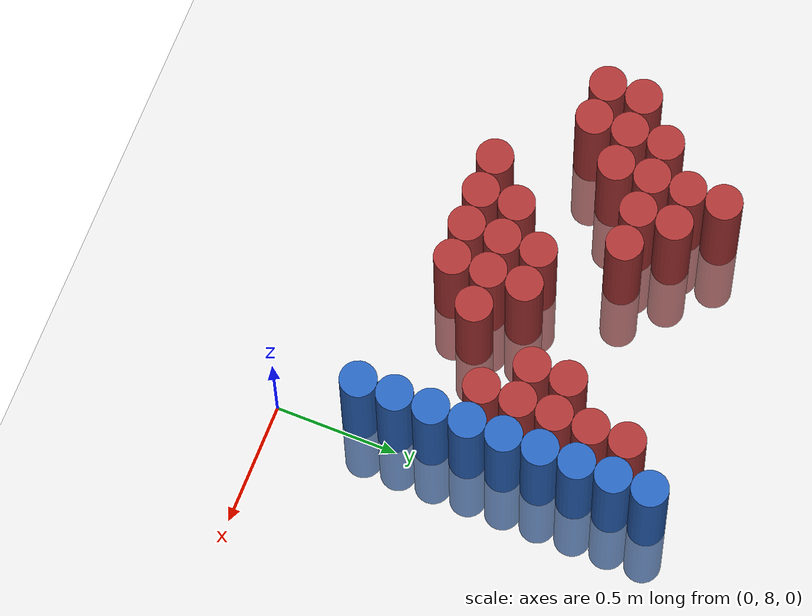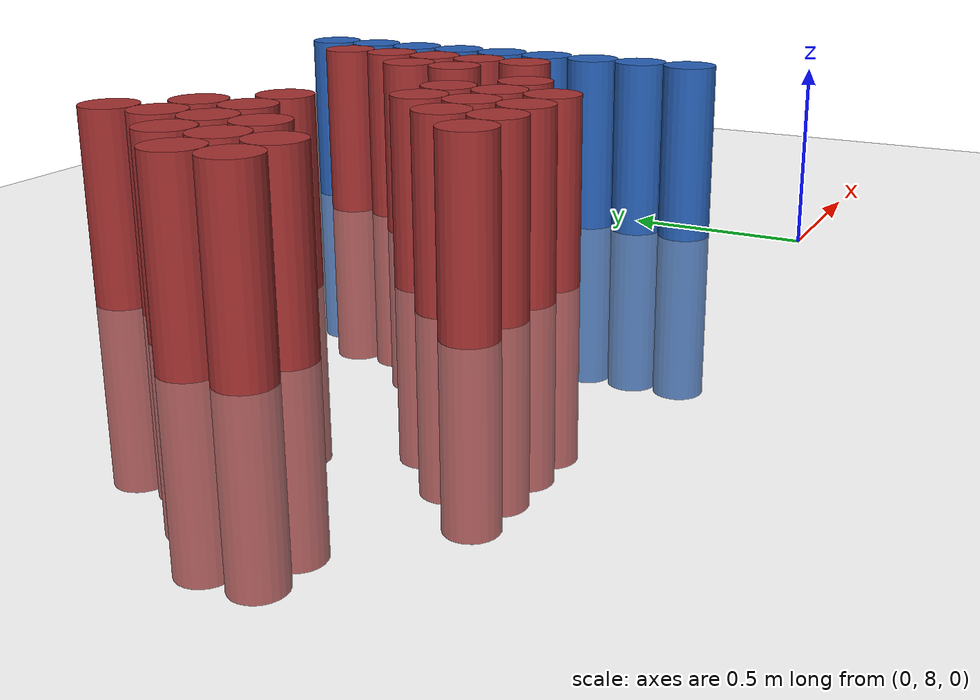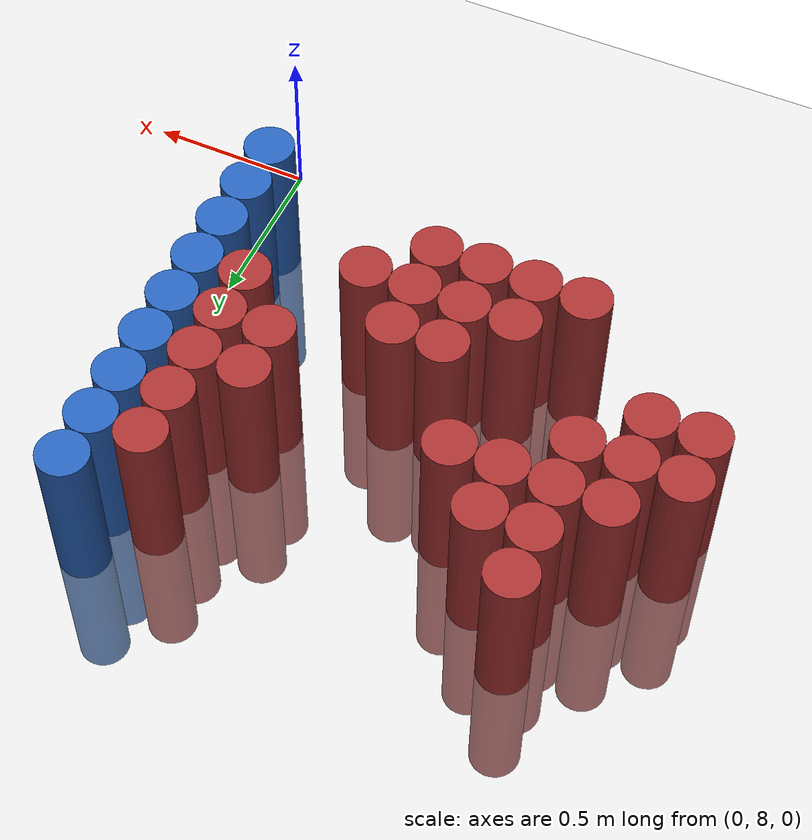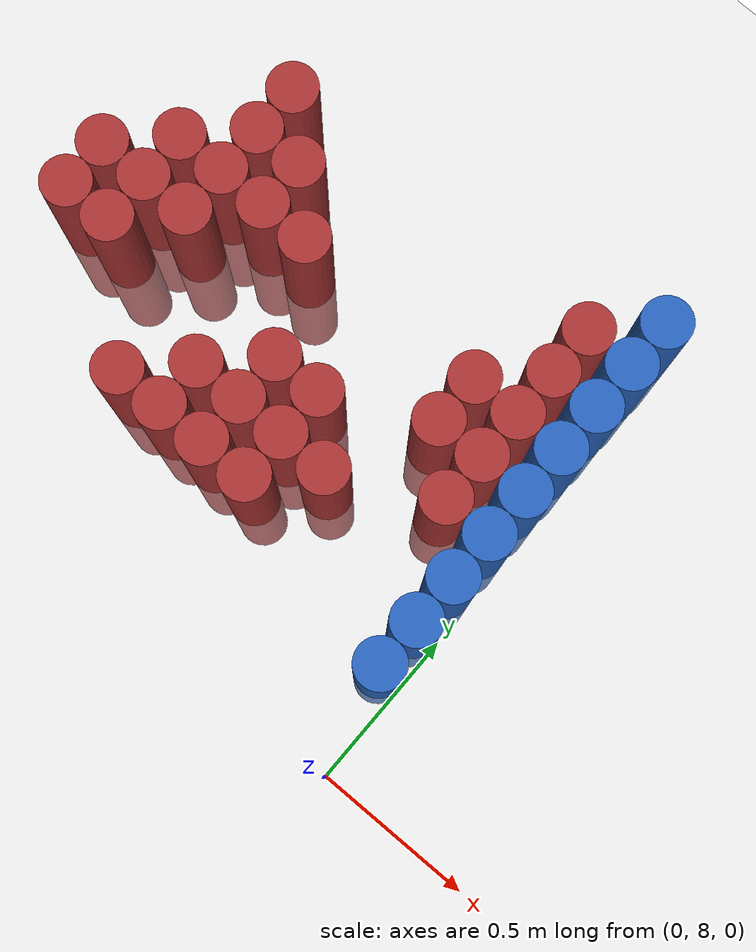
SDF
<sdf version="1.6">
 <world name="default">
  <model name="ground_plane">
   <static>1</static>
   <link name="link">
    <collision name="collision">
     <geometry><plane><normal>0 0 1</normal><size>100 100</size></plane></geometry>
     <surface><friction><ode><mu>100</mu><mu2>50</mu2></ode></friction></surface>
    </collision>
    <visual name="visual">
     <cast_shadows>0</cast_shadows>
     <geometry><plane><normal>0 0 1</normal><size>100 100</size></plane></geometry>
     <material>
      <script><uri>file://media/materials/scripts/gazebo.material</uri><name>Gazebo/Grey</name></script>
     </material>
    </visual>
   </link>
  </model>
  <model name="unit_cylinder_211">
   <static>1</static>
   <pose>-1.575000 8.775000 0.000000 0.000000 0.000000 0.000000</pose>
   <link name="link">
    <inertial>
     <mass>1</mass>
     <inertia><ixx>0.145833</ixx><ixy>0</ixy><ixz>0</ixz><iyy>0.145833</iyy><iyz>0</iyz><izz>0.125</izz></inertia>
    </inertial>
    <collision name="collision">
     <geometry><cylinder><radius>0.075000</radius><length>1</length></cylinder></geometry>
    </collision>
    <visual name="visual">
     <geometry><cylinder><radius>0.075000</radius><length>1</length></cylinder></geometry>
     <material>
      <ambient>0.648000 0.192000 0.192000 1</ambient>
      <diffuse>0.648000 0.192000 0.192000 1</diffuse>
     </material>
     <material>
      <script><name>Gazebo/Grey</name><uri>file://media/materials/scripts/gazebo.material</uri></script>
     </material>
    </visual>
    <sensor name="sensor_contact" type="contact"><contact><collision>collision</collision></contact></sensor>
   </link>
   <plugin filename="gz-sim-touchplugin-system" name="gz::sim::systems::TouchPlugin">
    <target>robot</target>
    <namespace>robot</namespace>
    <time>0.001</time>
    <enabled>true</enabled>
   </plugin>
  </model>
  <model name="unit_cylinder_212">
   <static>1</static>
   <pose>-1.575000 8.925000 0.000000 0.000000 0.000000 0.000000</pose>
   <link name="link">
    <inertial>
     <mass>1</mass>
     <inertia><ixx>0.145833</ixx><ixy>0</ixy><ixz>0</ixz><iyy>0.145833</iyy><iyz>0</iyz><izz>0.125</izz></inertia>
    </inertial>
    <collision name="collision">
     <geometry><cylinder><radius>0.075000</radius><length>1</length></cylinder></geometry>
    </collision>
    <visual name="visual">
     <geometry><cylinder><radius>0.075000</radius><length>1</length></cylinder></geometry>
     <material>
      <ambient>0.648000 0.192000 0.192000 1</ambient>
      <diffuse>0.648000 0.192000 0.192000 1</diffuse>
     </material>
     <material>
      <script><name>Gazebo/Grey</name><uri>file://media/materials/scripts/gazebo.material</uri></script>
     </material>
    </visual>
    <sensor name="sensor_contact" type="contact"><contact><collision>collision</collision></contact></sensor>
   </link>
   <plugin filename="gz-sim-touchplugin-system" name="gz::sim::systems::TouchPlugin">
    <target>robot</target>
    <namespace>robot</namespace>
    <time>0.001</time>
    <enabled>true</enabled>
   </plugin>
  </model>
  <model name="unit_cylinder_221">
   <static>1</static>
   <pose>-1.425000 8.775000 0.000000 0.000000 0.000000 0.000000</pose>
   <link name="link">
    <inertial>
     <mass>1</mass>
     <inertia><ixx>0.145833</ixx><ixy>0</ixy><ixz>0</ixz><iyy>0.145833</iyy><iyz>0</iyz><izz>0.125</izz></inertia>
    </inertial>
    <collision name="collision">
     <geometry><cylinder><radius>0.075000</radius><length>1</length></cylinder></geometry>
    </collision>
    <visual name="visual">
     <geometry><cylinder><radius>0.075000</radius><length>1</length></cylinder></geometry>
     <material>
      <ambient>0.648000 0.192000 0.192000 1</ambient>
      <diffuse>0.648000 0.192000 0.192000 1</diffuse>
     </material>
     <material>
      <script><name>Gazebo/Grey</name><uri>file://media/materials/scripts/gazebo.material</uri></script>
     </material>
    </visual>
    <sensor name="sensor_contact" type="contact"><contact><collision>collision</collision></contact></sensor>
   </link>
   <plugin filename="gz-sim-touchplugin-system" name="gz::sim::systems::TouchPlugin">
    <target>robot</target>
    <namespace>robot</namespace>
    <time>0.001</time>
    <enabled>true</enabled>
   </plugin>
  </model>
  <model name="unit_cylinder_222">
   <static>1</static>
   <pose>-1.425000 8.925000 0.000000 0.000000 0.000000 0.000000</pose>
   <link name="link">
    <inertial>
     <mass>1</mass>
     <inertia><ixx>0.145833</ixx><ixy>0</ixy><ixz>0</ixz><iyy>0.145833</iyy><iyz>0</iyz><izz>0.125</izz></inertia>
    </inertial>
    <collision name="collision">
     <geometry><cylinder><radius>0.075000</radius><length>1</length></cylinder></geometry>
    </collision>
    <visual name="visual">
     <geometry><cylinder><radius>0.075000</radius><length>1</length></cylinder></geometry>
     <material>
      <ambient>0.648000 0.192000 0.192000 1</ambient>
      <diffuse>0.648000 0.192000 0.192000 1</diffuse>
     </material>
     <material>
      <script><name>Gazebo/Grey</name><uri>file://media/materials/scripts/gazebo.material</uri></script>
     </material>
    </visual>
    <sensor name="sensor_contact" type="contact"><contact><collision>collision</collision></contact></sensor>
   </link>
   <plugin filename="gz-sim-touchplugin-system" name="gz::sim::systems::TouchPlugin">
    <target>robot</target>
    <namespace>robot</namespace>
    <time>0.001</time>
    <enabled>true</enabled>
   </plugin>
  </model>
  <model name="unit_cylinder_223">
   <static>1</static>
   <pose>-1.425000 9.075000 0.000000 0.000000 0.000000 0.000000</pose>
   <link name="link">
    <inertial>
     <mass>1</mass>
     <inertia><ixx>0.145833</ixx><ixy>0</ixy><ixz>0</ixz><iyy>0.145833</iyy><iyz>0</iyz><izz>0.125</izz></inertia>
    </inertial>
    <collision name="collision">
     <geometry><cylinder><radius>0.075000</radius><length>1</length></cylinder></geometry>
    </collision>
    <visual name="visual">
     <geometry><cylinder><radius>0.075000</radius><length>1</length></cylinder></geometry>
     <material>
      <ambient>0.648000 0.192000 0.192000 1</ambient>
      <diffuse>0.648000 0.192000 0.192000 1</diffuse>
     </material>
     <material>
      <script><name>Gazebo/Grey</name><uri>file://media/materials/scripts/gazebo.material</uri></script>
     </material>
    </visual>
    <sensor name="sensor_contact" type="contact"><contact><collision>collision</collision></contact></sensor>
   </link>
   <plugin filename="gz-sim-touchplugin-system" name="gz::sim::systems::TouchPlugin">
    <target>robot</target>
    <namespace>robot</namespace>
    <time>0.001</time>
    <enabled>true</enabled>
   </plugin>
  </model>
  <model name="unit_cylinder_233">
   <static>1</static>
   <pose>-1.275000 8.925000 0.000000 0.000000 0.000000 0.000000</pose>
   <link name="link">
    <inertial>
     <mass>1</mass>
     <inertia><ixx>0.145833</ixx><ixy>0</ixy><ixz>0</ixz><iyy>0.145833</iyy><iyz>0</iyz><izz>0.125</izz></inertia>
    </inertial>
    <collision name="collision">
     <geometry><cylinder><radius>0.075000</radius><length>1</length></cylinder></geometry>
    </collision>
    <visual name="visual">
     <geometry><cylinder><radius>0.075000</radius><length>1</length></cylinder></geometry>
     <material>
      <ambient>0.648000 0.192000 0.192000 1</ambient>
      <diffuse>0.648000 0.192000 0.192000 1</diffuse>
     </material>
     <material>
      <script><name>Gazebo/Grey</name><uri>file://media/materials/scripts/gazebo.material</uri></script>
     </material>
    </visual>
    <sensor name="sensor_contact" type="contact"><contact><collision>collision</collision></contact></sensor>
   </link>
   <plugin filename="gz-sim-touchplugin-system" name="gz::sim::systems::TouchPlugin">
    <target>robot</target>
    <namespace>robot</namespace>
    <time>0.001</time>
    <enabled>true</enabled>
   </plugin>
  </model>
  <model name="unit_cylinder_234">
   <static>1</static>
   <pose>-1.275000 9.075000 0.000000 0.000000 0.000000 0.000000</pose>
   <link name="link">
    <inertial>
     <mass>1</mass>
     <inertia><ixx>0.145833</ixx><ixy>0</ixy><ixz>0</ixz><iyy>0.145833</iyy><iyz>0</iyz><izz>0.125</izz></inertia>
    </inertial>
    <collision name="collision">
     <geometry><cylinder><radius>0.075000</radius><length>1</length></cylinder></geometry>
    </collision>
    <visual name="visual">
     <geometry><cylinder><radius>0.075000</radius><length>1</length></cylinder></geometry>
     <material>
      <ambient>0.648000 0.192000 0.192000 1</ambient>
      <diffuse>0.648000 0.192000 0.192000 1</diffuse>
     </material>
     <material>
      <script><name>Gazebo/Grey</name><uri>file://media/materials/scripts/gazebo.material</uri></script>
     </material>
    </visual>
    <sensor name="sensor_contact" type="contact"><contact><collision>collision</collision></contact></sensor>
   </link>
   <plugin filename="gz-sim-touchplugin-system" name="gz::sim::systems::TouchPlugin">
    <target>robot</target>
    <namespace>robot</namespace>
    <time>0.001</time>
    <enabled>true</enabled>
   </plugin>
  </model>
  <model name="unit_cylinder_235">
   <static>1</static>
   <pose>-1.275000 9.225000 0.000000 0.000000 0.000000 0.000000</pose>
   <link name="link">
    <inertial>
     <mass>1</mass>
     <inertia><ixx>0.145833</ixx><ixy>0</ixy><ixz>0</ixz><iyy>0.145833</iyy><iyz>0</iyz><izz>0.125</izz></inertia>
    </inertial>
    <collision name="collision">
     <geometry><cylinder><radius>0.075000</radius><length>1</length></cylinder></geometry>
    </collision>
    <visual name="visual">
     <geometry><cylinder><radius>0.075000</radius><length>1</length></cylinder></geometry>
     <material>
      <ambient>0.648000 0.192000 0.192000 1</ambient>
      <diffuse>0.648000 0.192000 0.192000 1</diffuse>
     </material>
     <material>
      <script><name>Gazebo/Grey</name><uri>file://media/materials/scripts/gazebo.material</uri></script>
     </material>
    </visual>
    <sensor name="sensor_contact" type="contact"><contact><collision>collision</collision></contact></sensor>
   </link>
   <plugin filename="gz-sim-touchplugin-system" name="gz::sim::systems::TouchPlugin">
    <target>robot</target>
    <namespace>robot</namespace>
    <time>0.001</time>
    <enabled>true</enabled>
   </plugin>
  </model>
  <model name="unit_cylinder_236">
   <static>1</static>
   <pose>-1.275000 9.375000 0.000000 0.000000 0.000000 0.000000</pose>
   <link name="link">
    <inertial>
     <mass>1</mass>
     <inertia><ixx>0.145833</ixx><ixy>0</ixy><ixz>0</ixz><iyy>0.145833</iyy><iyz>0</iyz><izz>0.125</izz></inertia>
    </inertial>
    <collision name="collision">
     <geometry><cylinder><radius>0.075000</radius><length>1</length></cylinder></geometry>
    </collision>
    <visual name="visual">
     <geometry><cylinder><radius>0.075000</radius><length>1</length></cylinder></geometry>
     <material>
      <ambient>0.648000 0.192000 0.192000 1</ambient>
      <diffuse>0.648000 0.192000 0.192000 1</diffuse>
     </material>
     <material>
      <script><name>Gazebo/Grey</name><uri>file://media/materials/scripts/gazebo.material</uri></script>
     </material>
    </visual>
    <sensor name="sensor_contact" type="contact"><contact><collision>collision</collision></contact></sensor>
   </link>
   <plugin filename="gz-sim-touchplugin-system" name="gz::sim::systems::TouchPlugin">
    <target>robot</target>
    <namespace>robot</namespace>
    <time>0.001</time>
    <enabled>true</enabled>
   </plugin>
  </model>
  <model name="unit_cylinder_248">
   <static>1</static>
   <pose>-1.125000 8.475000 0.000000 0.000000 0.000000 0.000000</pose>
   <link name="link">
    <inertial>
     <mass>1</mass>
     <inertia><ixx>0.145833</ixx><ixy>0</ixy><ixz>0</ixz><iyy>0.145833</iyy><iyz>0</iyz><izz>0.125</izz></inertia>
    </inertial>
    <collision name="collision">
     <geometry><cylinder><radius>0.075000</radius><length>1</length></cylinder></geometry>
    </collision>
    <visual name="visual">
     <geometry><cylinder><radius>0.075000</radius><length>1</length></cylinder></geometry>
     <material>
      <ambient>0.648000 0.192000 0.192000 1</ambient>
      <diffuse>0.648000 0.192000 0.192000 1</diffuse>
     </material>
     <material>
      <script><name>Gazebo/Grey</name><uri>file://media/materials/scripts/gazebo.material</uri></script>
     </material>
    </visual>
    <sensor name="sensor_contact" type="contact"><contact><collision>collision</collision></contact></sensor>
   </link>
   <plugin filename="gz-sim-touchplugin-system" name="gz::sim::systems::TouchPlugin">
    <target>robot</target>
    <namespace>robot</namespace>
    <time>0.001</time>
    <enabled>true</enabled>
   </plugin>
  </model>
  <model name="unit_cylinder_249">
   <static>1</static>
   <pose>-1.125000 9.075000 0.000000 0.000000 0.000000 0.000000</pose>
   <link name="link">
    <inertial>
     <mass>1</mass>
     <inertia><ixx>0.145833</ixx><ixy>0</ixy><ixz>0</ixz><iyy>0.145833</iyy><iyz>0</iyz><izz>0.125</izz></inertia>
    </inertial>
    <collision name="collision">
     <geometry><cylinder><radius>0.075000</radius><length>1</length></cylinder></geometry>
    </collision>
    <visual name="visual">
     <geometry><cylinder><radius>0.075000</radius><length>1</length></cylinder></geometry>
     <material>
      <ambient>0.648000 0.192000 0.192000 1</ambient>
      <diffuse>0.648000 0.192000 0.192000 1</diffuse>
     </material>
     <material>
      <script><name>Gazebo/Grey</name><uri>file://media/materials/scripts/gazebo.material</uri></script>
     </material>
    </visual>
    <sensor name="sensor_contact" type="contact"><contact><collision>collision</collision></contact></sensor>
   </link>
   <plugin filename="gz-sim-touchplugin-system" name="gz::sim::systems::TouchPlugin">
    <target>robot</target>
    <namespace>robot</namespace>
    <time>0.001</time>
    <enabled>true</enabled>
   </plugin>
  </model>
  <model name="unit_cylinder_250">
   <static>1</static>
   <pose>-1.125000 9.225000 0.000000 0.000000 0.000000 0.000000</pose>
   <link name="link">
    <inertial>
     <mass>1</mass>
     <inertia><ixx>0.145833</ixx><ixy>0</ixy><ixz>0</ixz><iyy>0.145833</iyy><iyz>0</iyz><izz>0.125</izz></inertia>
    </inertial>
    <collision name="collision">
     <geometry><cylinder><radius>0.075000</radius><length>1</length></cylinder></geometry>
    </collision>
    <visual name="visual">
     <geometry><cylinder><radius>0.075000</radius><length>1</length></cylinder></geometry>
     <material>
      <ambient>0.648000 0.192000 0.192000 1</ambient>
      <diffuse>0.648000 0.192000 0.192000 1</diffuse>
     </material>
     <material>
      <script><name>Gazebo/Grey</name><uri>file://media/materials/scripts/gazebo.material</uri></script>
     </material>
    </visual>
    <sensor name="sensor_contact" type="contact"><contact><collision>collision</collision></contact></sensor>
   </link>
   <plugin filename="gz-sim-touchplugin-system" name="gz::sim::systems::TouchPlugin">
    <target>robot</target>
    <namespace>robot</namespace>
    <time>0.001</time>
    <enabled>true</enabled>
   </plugin>
  </model>
  <model name="unit_cylinder_260">
   <static>1</static>
   <pose>-0.975000 8.475000 0.000000 0.000000 0.000000 0.000000</pose>
   <link name="link">
    <inertial>
     <mass>1</mass>
     <inertia><ixx>0.145833</ixx><ixy>0</ixy><ixz>0</ixz><iyy>0.145833</iyy><iyz>0</iyz><izz>0.125</izz></inertia>
    </inertial>
    <collision name="collision">
     <geometry><cylinder><radius>0.075000</radius><length>1</length></cylinder></geometry>
    </collision>
    <visual name="visual">
     <geometry><cylinder><radius>0.075000</radius><length>1</length></cylinder></geometry>
     <material>
      <ambient>0.648000 0.192000 0.192000 1</ambient>
      <diffuse>0.648000 0.192000 0.192000 1</diffuse>
     </material>
     <material>
      <script><name>Gazebo/Grey</name><uri>file://media/materials/scripts/gazebo.material</uri></script>
     </material>
    </visual>
    <sensor name="sensor_contact" type="contact"><contact><collision>collision</collision></contact></sensor>
   </link>
   <plugin filename="gz-sim-touchplugin-system" name="gz::sim::systems::TouchPlugin">
    <target>robot</target>
    <namespace>robot</namespace>
    <time>0.001</time>
    <enabled>true</enabled>
   </plugin>
  </model>
  <model name="unit_cylinder_261">
   <static>1</static>
   <pose>-0.975000 8.625000 0.000000 0.000000 0.000000 0.000000</pose>
   <link name="link">
    <inertial>
     <mass>1</mass>
     <inertia><ixx>0.145833</ixx><ixy>0</ixy><ixz>0</ixz><iyy>0.145833</iyy><iyz>0</iyz><izz>0.125</izz></inertia>
    </inertial>
    <collision name="collision">
     <geometry><cylinder><radius>0.075000</radius><length>1</length></cylinder></geometry>
    </collision>
    <visual name="visual">
     <geometry><cylinder><radius>0.075000</radius><length>1</length></cylinder></geometry>
     <material>
      <ambient>0.648000 0.192000 0.192000 1</ambient>
      <diffuse>0.648000 0.192000 0.192000 1</diffuse>
     </material>
     <material>
      <script><name>Gazebo/Grey</name><uri>file://media/materials/scripts/gazebo.material</uri></script>
     </material>
    </visual>
    <sensor name="sensor_contact" type="contact"><contact><collision>collision</collision></contact></sensor>
   </link>
   <plugin filename="gz-sim-touchplugin-system" name="gz::sim::systems::TouchPlugin">
    <target>robot</target>
    <namespace>robot</namespace>
    <time>0.001</time>
    <enabled>true</enabled>
   </plugin>
  </model>
  <model name="unit_cylinder_262">
   <static>1</static>
   <pose>-0.975000 9.075000 0.000000 0.000000 0.000000 0.000000</pose>
   <link name="link">
    <inertial>
     <mass>1</mass>
     <inertia><ixx>0.145833</ixx><ixy>0</ixy><ixz>0</ixz><iyy>0.145833</iyy><iyz>0</iyz><izz>0.125</izz></inertia>
    </inertial>
    <collision name="collision">
     <geometry><cylinder><radius>0.075000</radius><length>1</length></cylinder></geometry>
    </collision>
    <visual name="visual">
     <geometry><cylinder><radius>0.075000</radius><length>1</length></cylinder></geometry>
     <material>
      <ambient>0.648000 0.192000 0.192000 1</ambient>
      <diffuse>0.648000 0.192000 0.192000 1</diffuse>
     </material>
     <material>
      <script><name>Gazebo/Grey</name><uri>file://media/materials/scripts/gazebo.material</uri></script>
     </material>
    </visual>
    <sensor name="sensor_contact" type="contact"><contact><collision>collision</collision></contact></sensor>
   </link>
   <plugin filename="gz-sim-touchplugin-system" name="gz::sim::systems::TouchPlugin">
    <target>robot</target>
    <namespace>robot</namespace>
    <time>0.001</time>
    <enabled>true</enabled>
   </plugin>
  </model>
  <model name="unit_cylinder_267">
   <static>1</static>
   <pose>-0.825000 8.475000 0.000000 0.000000 0.000000 0.000000</pose>
   <link name="link">
    <inertial>
     <mass>1</mass>
     <inertia><ixx>0.145833</ixx><ixy>0</ixy><ixz>0</ixz><iyy>0.145833</iyy><iyz>0</iyz><izz>0.125</izz></inertia>
    </inertial>
    <collision name="collision">
     <geometry><cylinder><radius>0.075000</radius><length>1</length></cylinder></geometry>
    </collision>
    <visual name="visual">
     <geometry><cylinder><radius>0.075000</radius><length>1</length></cylinder></geometry>
     <material>
      <ambient>0.648000 0.192000 0.192000 1</ambient>
      <diffuse>0.648000 0.192000 0.192000 1</diffuse>
     </material>
     <material>
      <script><name>Gazebo/Grey</name><uri>file://media/materials/scripts/gazebo.material</uri></script>
     </material>
    </visual>
    <sensor name="sensor_contact" type="contact"><contact><collision>collision</collision></contact></sensor>
   </link>
   <plugin filename="gz-sim-touchplugin-system" name="gz::sim::systems::TouchPlugin">
    <target>robot</target>
    <namespace>robot</namespace>
    <time>0.001</time>
    <enabled>true</enabled>
   </plugin>
  </model>
  <model name="unit_cylinder_268">
   <static>1</static>
   <pose>-0.825000 8.625000 0.000000 0.000000 0.000000 0.000000</pose>
   <link name="link">
    <inertial>
     <mass>1</mass>
     <inertia><ixx>0.145833</ixx><ixy>0</ixy><ixz>0</ixz><iyy>0.145833</iyy><iyz>0</iyz><izz>0.125</izz></inertia>
    </inertial>
    <collision name="collision">
     <geometry><cylinder><radius>0.075000</radius><length>1</length></cylinder></geometry>
    </collision>
    <visual name="visual">
     <geometry><cylinder><radius>0.075000</radius><length>1</length></cylinder></geometry>
     <material>
      <ambient>0.648000 0.192000 0.192000 1</ambient>
      <diffuse>0.648000 0.192000 0.192000 1</diffuse>
     </material>
     <material>
      <script><name>Gazebo/Grey</name><uri>file://media/materials/scripts/gazebo.material</uri></script>
     </material>
    </visual>
    <sensor name="sensor_contact" type="contact"><contact><collision>collision</collision></contact></sensor>
   </link>
   <plugin filename="gz-sim-touchplugin-system" name="gz::sim::systems::TouchPlugin">
    <target>robot</target>
    <namespace>robot</namespace>
    <time>0.001</time>
    <enabled>true</enabled>
   </plugin>
  </model>
  <model name="unit_cylinder_269">
   <static>1</static>
   <pose>-0.825000 8.775000 0.000000 0.000000 0.000000 0.000000</pose>
   <link name="link">
    <inertial>
     <mass>1</mass>
     <inertia><ixx>0.145833</ixx><ixy>0</ixy><ixz>0</ixz><iyy>0.145833</iyy><iyz>0</iyz><izz>0.125</izz></inertia>
    </inertial>
    <collision name="collision">
     <geometry><cylinder><radius>0.075000</radius><length>1</length></cylinder></geometry>
    </collision>
    <visual name="visual">
     <geometry><cylinder><radius>0.075000</radius><length>1</length></cylinder></geometry>
     <material>
      <ambient>0.648000 0.192000 0.192000 1</ambient>
      <diffuse>0.648000 0.192000 0.192000 1</diffuse>
     </material>
     <material>
      <script><name>Gazebo/Grey</name><uri>file://media/materials/scripts/gazebo.material</uri></script>
     </material>
    </visual>
    <sensor name="sensor_contact" type="contact"><contact><collision>collision</collision></contact></sensor>
   </link>
   <plugin filename="gz-sim-touchplugin-system" name="gz::sim::systems::TouchPlugin">
    <target>robot</target>
    <namespace>robot</namespace>
    <time>0.001</time>
    <enabled>true</enabled>
   </plugin>
  </model>
  <model name="unit_cylinder_273">
   <static>1</static>
   <pose>-0.675000 8.475000 0.000000 0.000000 0.000000 0.000000</pose>
   <link name="link">
    <inertial>
     <mass>1</mass>
     <inertia><ixx>0.145833</ixx><ixy>0</ixy><ixz>0</ixz><iyy>0.145833</iyy><iyz>0</iyz><izz>0.125</izz></inertia>
    </inertial>
    <collision name="collision">
     <geometry><cylinder><radius>0.075000</radius><length>1</length></cylinder></geometry>
    </collision>
    <visual name="visual">
     <geometry><cylinder><radius>0.075000</radius><length>1</length></cylinder></geometry>
     <material>
      <ambient>0.648000 0.192000 0.192000 1</ambient>
      <diffuse>0.648000 0.192000 0.192000 1</diffuse>
     </material>
     <material>
      <script><name>Gazebo/Grey</name><uri>file://media/materials/scripts/gazebo.material</uri></script>
     </material>
    </visual>
    <sensor name="sensor_contact" type="contact"><contact><collision>collision</collision></contact></sensor>
   </link>
   <plugin filename="gz-sim-touchplugin-system" name="gz::sim::systems::TouchPlugin">
    <target>robot</target>
    <namespace>robot</namespace>
    <time>0.001</time>
    <enabled>true</enabled>
   </plugin>
  </model>
  <model name="unit_cylinder_274">
   <static>1</static>
   <pose>-0.675000 8.625000 0.000000 0.000000 0.000000 0.000000</pose>
   <link name="link">
    <inertial>
     <mass>1</mass>
     <inertia><ixx>0.145833</ixx><ixy>0</ixy><ixz>0</ixz><iyy>0.145833</iyy><iyz>0</iyz><izz>0.125</izz></inertia>
    </inertial>
    <collision name="collision">
     <geometry><cylinder><radius>0.075000</radius><length>1</length></cylinder></geometry>
    </collision>
    <visual name="visual">
     <geometry><cylinder><radius>0.075000</radius><length>1</length></cylinder></geometry>
     <material>
      <ambient>0.648000 0.192000 0.192000 1</ambient>
      <diffuse>0.648000 0.192000 0.192000 1</diffuse>
     </material>
     <material>
      <script><name>Gazebo/Grey</name><uri>file://media/materials/scripts/gazebo.material</uri></script>
     </material>
    </visual>
    <sensor name="sensor_contact" type="contact"><contact><collision>collision</collision></contact></sensor>
   </link>
   <plugin filename="gz-sim-touchplugin-system" name="gz::sim::systems::TouchPlugin">
    <target>robot</target>
    <namespace>robot</namespace>
    <time>0.001</time>
    <enabled>true</enabled>
   </plugin>
  </model>
  <model name="unit_cylinder_275">
   <static>1</static>
   <pose>-0.675000 8.775000 0.000000 0.000000 0.000000 0.000000</pose>
   <link name="link">
    <inertial>
     <mass>1</mass>
     <inertia><ixx>0.145833</ixx><ixy>0</ixy><ixz>0</ixz><iyy>0.145833</iyy><iyz>0</iyz><izz>0.125</izz></inertia>
    </inertial>
    <collision name="collision">
     <geometry><cylinder><radius>0.075000</radius><length>1</length></cylinder></geometry>
    </collision>
    <visual name="visual">
     <geometry><cylinder><radius>0.075000</radius><length>1</length></cylinder></geometry>
     <material>
      <ambient>0.648000 0.192000 0.192000 1</ambient>
      <diffuse>0.648000 0.192000 0.192000 1</diffuse>
     </material>
     <material>
      <script><name>Gazebo/Grey</name><uri>file://media/materials/scripts/gazebo.material</uri></script>
     </material>
    </visual>
    <sensor name="sensor_contact" type="contact"><contact><collision>collision</collision></contact></sensor>
   </link>
   <plugin filename="gz-sim-touchplugin-system" name="gz::sim::systems::TouchPlugin">
    <target>robot</target>
    <namespace>robot</namespace>
    <time>0.001</time>
    <enabled>true</enabled>
   </plugin>
  </model>
  <model name="unit_cylinder_281">
   <static>1</static>
   <pose>-0.525000 8.625000 0.000000 0.000000 0.000000 0.000000</pose>
   <link name="link">
    <inertial>
     <mass>1</mass>
     <inertia><ixx>0.145833</ixx><ixy>0</ixy><ixz>0</ixz><iyy>0.145833</iyy><iyz>0</iyz><izz>0.125</izz></inertia>
    </inertial>
    <collision name="collision">
     <geometry><cylinder><radius>0.075000</radius><length>1</length></cylinder></geometry>
    </collision>
    <visual name="visual">
     <geometry><cylinder><radius>0.075000</radius><length>1</length></cylinder></geometry>
     <material>
      <ambient>0.648000 0.192000 0.192000 1</ambient>
      <diffuse>0.648000 0.192000 0.192000 1</diffuse>
     </material>
     <material>
      <script><name>Gazebo/Grey</name><uri>file://media/materials/scripts/gazebo.material</uri></script>
     </material>
    </visual>
    <sensor name="sensor_contact" type="contact"><contact><collision>collision</collision></contact></sensor>
   </link>
   <plugin filename="gz-sim-touchplugin-system" name="gz::sim::systems::TouchPlugin">
    <target>robot</target>
    <namespace>robot</namespace>
    <time>0.001</time>
    <enabled>true</enabled>
   </plugin>
  </model>
  <model name="unit_cylinder_291">
   <static>1</static>
   <pose>-0.375000 8.925000 0.000000 0.000000 0.000000 0.000000</pose>
   <link name="link">
    <inertial>
     <mass>1</mass>
     <inertia><ixx>0.145833</ixx><ixy>0</ixy><ixz>0</ixz><iyy>0.145833</iyy><iyz>0</iyz><izz>0.125</izz></inertia>
    </inertial>
    <collision name="collision">
     <geometry><cylinder><radius>0.075000</radius><length>1</length></cylinder></geometry>
    </collision>
    <visual name="visual">
     <geometry><cylinder><radius>0.075000</radius><length>1</length></cylinder></geometry>
     <material>
      <ambient>0.648000 0.192000 0.192000 1</ambient>
      <diffuse>0.648000 0.192000 0.192000 1</diffuse>
     </material>
     <material>
      <script><name>Gazebo/Grey</name><uri>file://media/materials/scripts/gazebo.material</uri></script>
     </material>
    </visual>
    <sensor name="sensor_contact" type="contact"><contact><collision>collision</collision></contact></sensor>
   </link>
   <plugin filename="gz-sim-touchplugin-system" name="gz::sim::systems::TouchPlugin">
    <target>robot</target>
    <namespace>robot</namespace>
    <time>0.001</time>
    <enabled>true</enabled>
   </plugin>
  </model>
  <model name="unit_cylinder_292">
   <static>1</static>
   <pose>-0.375000 9.075000 0.000000 0.000000 0.000000 0.000000</pose>
   <link name="link">
    <inertial>
     <mass>1</mass>
     <inertia><ixx>0.145833</ixx><ixy>0</ixy><ixz>0</ixz><iyy>0.145833</iyy><iyz>0</iyz><izz>0.125</izz></inertia>
    </inertial>
    <collision name="collision">
     <geometry><cylinder><radius>0.075000</radius><length>1</length></cylinder></geometry>
    </collision>
    <visual name="visual">
     <geometry><cylinder><radius>0.075000</radius><length>1</length></cylinder></geometry>
     <material>
      <ambient>0.648000 0.192000 0.192000 1</ambient>
      <diffuse>0.648000 0.192000 0.192000 1</diffuse>
     </material>
     <material>
      <script><name>Gazebo/Grey</name><uri>file://media/materials/scripts/gazebo.material</uri></script>
     </material>
    </visual>
    <sensor name="sensor_contact" type="contact"><contact><collision>collision</collision></contact></sensor>
   </link>
   <plugin filename="gz-sim-touchplugin-system" name="gz::sim::systems::TouchPlugin">
    <target>robot</target>
    <namespace>robot</namespace>
    <time>0.001</time>
    <enabled>true</enabled>
   </plugin>
  </model>
  <model name="unit_cylinder_302">
   <static>1</static>
   <pose>-0.225000 8.775000 0.000000 0.000000 0.000000 0.000000</pose>
   <link name="link">
    <inertial>
     <mass>1</mass>
     <inertia><ixx>0.145833</ixx><ixy>0</ixy><ixz>0</ixz><iyy>0.145833</iyy><iyz>0</iyz><izz>0.125</izz></inertia>
    </inertial>
    <collision name="collision">
     <geometry><cylinder><radius>0.075000</radius><length>1</length></cylinder></geometry>
    </collision>
    <visual name="visual">
     <geometry><cylinder><radius>0.075000</radius><length>1</length></cylinder></geometry>
     <material>
      <ambient>0.648000 0.192000 0.192000 1</ambient>
      <diffuse>0.648000 0.192000 0.192000 1</diffuse>
     </material>
     <material>
      <script><name>Gazebo/Grey</name><uri>file://media/materials/scripts/gazebo.material</uri></script>
     </material>
    </visual>
    <sensor name="sensor_contact" type="contact"><contact><collision>collision</collision></contact></sensor>
   </link>
   <plugin filename="gz-sim-touchplugin-system" name="gz::sim::systems::TouchPlugin">
    <target>robot</target>
    <namespace>robot</namespace>
    <time>0.001</time>
    <enabled>true</enabled>
   </plugin>
  </model>
  <model name="unit_cylinder_303">
   <static>1</static>
   <pose>-0.225000 8.925000 0.000000 0.000000 0.000000 0.000000</pose>
   <link name="link">
    <inertial>
     <mass>1</mass>
     <inertia><ixx>0.145833</ixx><ixy>0</ixy><ixz>0</ixz><iyy>0.145833</iyy><iyz>0</iyz><izz>0.125</izz></inertia>
    </inertial>
    <collision name="collision">
     <geometry><cylinder><radius>0.075000</radius><length>1</length></cylinder></geometry>
    </collision>
    <visual name="visual">
     <geometry><cylinder><radius>0.075000</radius><length>1</length></cylinder></geometry>
     <material>
      <ambient>0.648000 0.192000 0.192000 1</ambient>
      <diffuse>0.648000 0.192000 0.192000 1</diffuse>
     </material>
     <material>
      <script><name>Gazebo/Grey</name><uri>file://media/materials/scripts/gazebo.material</uri></script>
     </material>
    </visual>
    <sensor name="sensor_contact" type="contact"><contact><collision>collision</collision></contact></sensor>
   </link>
   <plugin filename="gz-sim-touchplugin-system" name="gz::sim::systems::TouchPlugin">
    <target>robot</target>
    <namespace>robot</namespace>
    <time>0.001</time>
    <enabled>true</enabled>
   </plugin>
  </model>
  <model name="unit_cylinder_304">
   <static>1</static>
   <pose>-0.225000 9.075000 0.000000 0.000000 0.000000 0.000000</pose>
   <link name="link">
    <inertial>
     <mass>1</mass>
     <inertia><ixx>0.145833</ixx><ixy>0</ixy><ixz>0</ixz><iyy>0.145833</iyy><iyz>0</iyz><izz>0.125</izz></inertia>
    </inertial>
    <collision name="collision">
     <geometry><cylinder><radius>0.075000</radius><length>1</length></cylinder></geometry>
    </collision>
    <visual name="visual">
     <geometry><cylinder><radius>0.075000</radius><length>1</length></cylinder></geometry>
     <material>
      <ambient>0.648000 0.192000 0.192000 1</ambient>
      <diffuse>0.648000 0.192000 0.192000 1</diffuse>
     </material>
     <material>
      <script><name>Gazebo/Grey</name><uri>file://media/materials/scripts/gazebo.material</uri></script>
     </material>
    </visual>
    <sensor name="sensor_contact" type="contact"><contact><collision>collision</collision></contact></sensor>
   </link>
   <plugin filename="gz-sim-touchplugin-system" name="gz::sim::systems::TouchPlugin">
    <target>robot</target>
    <namespace>robot</namespace>
    <time>0.001</time>
    <enabled>true</enabled>
   </plugin>
  </model>
  <model name="unit_cylinder_305">
   <static>1</static>
   <pose>-0.225000 9.225000 0.000000 0.000000 0.000000 0.000000</pose>
   <link name="link">
    <inertial>
     <mass>1</mass>
     <inertia><ixx>0.145833</ixx><ixy>0</ixy><ixz>0</ixz><iyy>0.145833</iyy><iyz>0</iyz><izz>0.125</izz></inertia>
    </inertial>
    <collision name="collision">
     <geometry><cylinder><radius>0.075000</radius><length>1</length></cylinder></geometry>
    </collision>
    <visual name="visual">
     <geometry><cylinder><radius>0.075000</radius><length>1</length></cylinder></geometry>
     <material>
      <ambient>0.648000 0.192000 0.192000 1</ambient>
      <diffuse>0.648000 0.192000 0.192000 1</diffuse>
     </material>
     <material>
      <script><name>Gazebo/Grey</name><uri>file://media/materials/scripts/gazebo.material</uri></script>
     </material>
    </visual>
    <sensor name="sensor_contact" type="contact"><contact><collision>collision</collision></contact></sensor>
   </link>
   <plugin filename="gz-sim-touchplugin-system" name="gz::sim::systems::TouchPlugin">
    <target>robot</target>
    <namespace>robot</namespace>
    <time>0.001</time>
    <enabled>true</enabled>
   </plugin>
  </model>
  <model name="unit_cylinder_306">
   <static>1</static>
   <pose>-0.225000 9.375000 0.000000 0.000000 0.000000 0.000000</pose>
   <link name="link">
    <inertial>
     <mass>1</mass>
     <inertia><ixx>0.145833</ixx><ixy>0</ixy><ixz>0</ixz><iyy>0.145833</iyy><iyz>0</iyz><izz>0.125</izz></inertia>
    </inertial>
    <collision name="collision">
     <geometry><cylinder><radius>0.075000</radius><length>1</length></cylinder></geometry>
    </collision>
    <visual name="visual">
     <geometry><cylinder><radius>0.075000</radius><length>1</length></cylinder></geometry>
     <material>
      <ambient>0.648000 0.192000 0.192000 1</ambient>
      <diffuse>0.648000 0.192000 0.192000 1</diffuse>
     </material>
     <material>
      <script><name>Gazebo/Grey</name><uri>file://media/materials/scripts/gazebo.material</uri></script>
     </material>
    </visual>
    <sensor name="sensor_contact" type="contact"><contact><collision>collision</collision></contact></sensor>
   </link>
   <plugin filename="gz-sim-touchplugin-system" name="gz::sim::systems::TouchPlugin">
    <target>robot</target>
    <namespace>robot</namespace>
    <time>0.001</time>
    <enabled>true</enabled>
   </plugin>
  </model>
  <model name="unit_cylinder_328">
   <static>1</static>
   <pose>-0.075000 8.325000 0.000000 0.000000 0.000000 0.000000</pose>
   <link name="link">
    <inertial>
     <mass>1</mass>
     <inertia><ixx>0.145833</ixx><ixy>0</ixy><ixz>0</ixz><iyy>0.145833</iyy><iyz>0</iyz><izz>0.125</izz></inertia>
    </inertial>
    <collision name="collision">
     <geometry><cylinder><radius>0.075000</radius><length>1</length></cylinder></geometry>
    </collision>
    <visual name="visual">
     <geometry><cylinder><radius>0.075000</radius><length>1</length></cylinder></geometry>
     <material>
      <ambient>0.152000 0.379000 0.720000 1</ambient>
      <diffuse>0.152000 0.379000 0.720000 1</diffuse>
     </material>
     <material>
      <script><name>Gazebo/Grey</name><uri>file://media/materials/scripts/gazebo.material</uri></script>
     </material>
    </visual>
    <sensor name="sensor_contact" type="contact"><contact><collision>collision</collision></contact></sensor>
   </link>
   <plugin filename="gz-sim-touchplugin-system" name="gz::sim::systems::TouchPlugin">
    <target>robot</target>
    <namespace>robot</namespace>
    <time>0.001</time>
    <enabled>true</enabled>
   </plugin>
  </model>
  <model name="unit_cylinder_329">
   <static>1</static>
   <pose>-0.075000 8.475000 0.000000 0.000000 0.000000 0.000000</pose>
   <link name="link">
    <inertial>
     <mass>1</mass>
     <inertia><ixx>0.145833</ixx><ixy>0</ixy><ixz>0</ixz><iyy>0.145833</iyy><iyz>0</iyz><izz>0.125</izz></inertia>
    </inertial>
    <collision name="collision">
     <geometry><cylinder><radius>0.075000</radius><length>1</length></cylinder></geometry>
    </collision>
    <visual name="visual">
     <geometry><cylinder><radius>0.075000</radius><length>1</length></cylinder></geometry>
     <material>
      <ambient>0.152000 0.379000 0.720000 1</ambient>
      <diffuse>0.152000 0.379000 0.720000 1</diffuse>
     </material>
     <material>
      <script><name>Gazebo/Grey</name><uri>file://media/materials/scripts/gazebo.material</uri></script>
     </material>
    </visual>
    <sensor name="sensor_contact" type="contact"><contact><collision>collision</collision></contact></sensor>
   </link>
   <plugin filename="gz-sim-touchplugin-system" name="gz::sim::systems::TouchPlugin">
    <target>robot</target>
    <namespace>robot</namespace>
    <time>0.001</time>
    <enabled>true</enabled>
   </plugin>
  </model>
  <model name="unit_cylinder_330">
   <static>1</static>
   <pose>-0.075000 8.625000 0.000000 0.000000 0.000000 0.000000</pose>
   <link name="link">
    <inertial>
     <mass>1</mass>
     <inertia><ixx>0.145833</ixx><ixy>0</ixy><ixz>0</ixz><iyy>0.145833</iyy><iyz>0</iyz><izz>0.125</izz></inertia>
    </inertial>
    <collision name="collision">
     <geometry><cylinder><radius>0.075000</radius><length>1</length></cylinder></geometry>
    </collision>
    <visual name="visual">
     <geometry><cylinder><radius>0.075000</radius><length>1</length></cylinder></geometry>
     <material>
      <ambient>0.152000 0.379000 0.720000 1</ambient>
      <diffuse>0.152000 0.379000 0.720000 1</diffuse>
     </material>
     <material>
      <script><name>Gazebo/Grey</name><uri>file://media/materials/scripts/gazebo.material</uri></script>
     </material>
    </visual>
    <sensor name="sensor_contact" type="contact"><contact><collision>collision</collision></contact></sensor>
   </link>
   <plugin filename="gz-sim-touchplugin-system" name="gz::sim::systems::TouchPlugin">
    <target>robot</target>
    <namespace>robot</namespace>
    <time>0.001</time>
    <enabled>true</enabled>
   </plugin>
  </model>
  <model name="unit_cylinder_331">
   <static>1</static>
   <pose>-0.075000 8.775000 0.000000 0.000000 0.000000 0.000000</pose>
   <link name="link">
    <inertial>
     <mass>1</mass>
     <inertia><ixx>0.145833</ixx><ixy>0</ixy><ixz>0</ixz><iyy>0.145833</iyy><iyz>0</iyz><izz>0.125</izz></inertia>
    </inertial>
    <collision name="collision">
     <geometry><cylinder><radius>0.075000</radius><length>1</length></cylinder></geometry>
    </collision>
    <visual name="visual">
     <geometry><cylinder><radius>0.075000</radius><length>1</length></cylinder></geometry>
     <material>
      <ambient>0.152000 0.379000 0.720000 1</ambient>
      <diffuse>0.152000 0.379000 0.720000 1</diffuse>
     </material>
     <material>
      <script><name>Gazebo/Grey</name><uri>file://media/materials/scripts/gazebo.material</uri></script>
     </material>
    </visual>
    <sensor name="sensor_contact" type="contact"><contact><collision>collision</collision></contact></sensor>
   </link>
   <plugin filename="gz-sim-touchplugin-system" name="gz::sim::systems::TouchPlugin">
    <target>robot</target>
    <namespace>robot</namespace>
    <time>0.001</time>
    <enabled>true</enabled>
   </plugin>
  </model>
  <model name="unit_cylinder_332">
   <static>1</static>
   <pose>-0.075000 8.925000 0.000000 0.000000 0.000000 0.000000</pose>
   <link name="link">
    <inertial>
     <mass>1</mass>
     <inertia><ixx>0.145833</ixx><ixy>0</ixy><ixz>0</ixz><iyy>0.145833</iyy><iyz>0</iyz><izz>0.125</izz></inertia>
    </inertial>
    <collision name="collision">
     <geometry><cylinder><radius>0.075000</radius><length>1</length></cylinder></geometry>
    </collision>
    <visual name="visual">
     <geometry><cylinder><radius>0.075000</radius><length>1</length></cylinder></geometry>
     <material>
      <ambient>0.152000 0.379000 0.720000 1</ambient>
      <diffuse>0.152000 0.379000 0.720000 1</diffuse>
     </material>
     <material>
      <script><name>Gazebo/Grey</name><uri>file://media/materials/scripts/gazebo.material</uri></script>
     </material>
    </visual>
    <sensor name="sensor_contact" type="contact"><contact><collision>collision</collision></contact></sensor>
   </link>
   <plugin filename="gz-sim-touchplugin-system" name="gz::sim::systems::TouchPlugin">
    <target>robot</target>
    <namespace>robot</namespace>
    <time>0.001</time>
    <enabled>true</enabled>
   </plugin>
  </model>
  <model name="unit_cylinder_333">
   <static>1</static>
   <pose>-0.075000 9.075000 0.000000 0.000000 0.000000 0.000000</pose>
   <link name="link">
    <inertial>
     <mass>1</mass>
     <inertia><ixx>0.145833</ixx><ixy>0</ixy><ixz>0</ixz><iyy>0.145833</iyy><iyz>0</iyz><izz>0.125</izz></inertia>
    </inertial>
    <collision name="collision">
     <geometry><cylinder><radius>0.075000</radius><length>1</length></cylinder></geometry>
    </collision>
    <visual name="visual">
     <geometry><cylinder><radius>0.075000</radius><length>1</length></cylinder></geometry>
     <material>
      <ambient>0.152000 0.379000 0.720000 1</ambient>
      <diffuse>0.152000 0.379000 0.720000 1</diffuse>
     </material>
     <material>
      <script><name>Gazebo/Grey</name><uri>file://media/materials/scripts/gazebo.material</uri></script>
     </material>
    </visual>
    <sensor name="sensor_contact" type="contact"><contact><collision>collision</collision></contact></sensor>
   </link>
   <plugin filename="gz-sim-touchplugin-system" name="gz::sim::systems::TouchPlugin">
    <target>robot</target>
    <namespace>robot</namespace>
    <time>0.001</time>
    <enabled>true</enabled>
   </plugin>
  </model>
  <model name="unit_cylinder_334">
   <static>1</static>
   <pose>-0.075000 9.225000 0.000000 0.000000 0.000000 0.000000</pose>
   <link name="link">
    <inertial>
     <mass>1</mass>
     <inertia><ixx>0.145833</ixx><ixy>0</ixy><ixz>0</ixz><iyy>0.145833</iyy><iyz>0</iyz><izz>0.125</izz></inertia>
    </inertial>
    <collision name="collision">
     <geometry><cylinder><radius>0.075000</radius><length>1</length></cylinder></geometry>
    </collision>
    <visual name="visual">
     <geometry><cylinder><radius>0.075000</radius><length>1</length></cylinder></geometry>
     <material>
      <ambient>0.152000 0.379000 0.720000 1</ambient>
      <diffuse>0.152000 0.379000 0.720000 1</diffuse>
     </material>
     <material>
      <script><name>Gazebo/Grey</name><uri>file://media/materials/scripts/gazebo.material</uri></script>
     </material>
    </visual>
    <sensor name="sensor_contact" type="contact"><contact><collision>collision</collision></contact></sensor>
   </link>
   <plugin filename="gz-sim-touchplugin-system" name="gz::sim::systems::TouchPlugin">
    <target>robot</target>
    <namespace>robot</namespace>
    <time>0.001</time>
    <enabled>true</enabled>
   </plugin>
  </model>
  <model name="unit_cylinder_335">
   <static>1</static>
   <pose>-0.075000 9.375000 0.000000 0.000000 0.000000 0.000000</pose>
   <link name="link">
    <inertial>
     <mass>1</mass>
     <inertia><ixx>0.145833</ixx><ixy>0</ixy><ixz>0</ixz><iyy>0.145833</iyy><iyz>0</iyz><izz>0.125</izz></inertia>
    </inertial>
    <collision name="collision">
     <geometry><cylinder><radius>0.075000</radius><length>1</length></cylinder></geometry>
    </collision>
    <visual name="visual">
     <geometry><cylinder><radius>0.075000</radius><length>1</length></cylinder></geometry>
     <material>
      <ambient>0.152000 0.379000 0.720000 1</ambient>
      <diffuse>0.152000 0.379000 0.720000 1</diffuse>
     </material>
     <material>
      <script><name>Gazebo/Grey</name><uri>file://media/materials/scripts/gazebo.material</uri></script>
     </material>
    </visual>
    <sensor name="sensor_contact" type="contact"><contact><collision>collision</collision></contact></sensor>
   </link>
   <plugin filename="gz-sim-touchplugin-system" name="gz::sim::systems::TouchPlugin">
    <target>robot</target>
    <namespace>robot</namespace>
    <time>0.001</time>
    <enabled>true</enabled>
   </plugin>
  </model>
  <model name="unit_cylinder_336">
   <static>1</static>
   <pose>-0.075000 9.525000 0.000000 0.000000 0.000000 0.000000</pose>
   <link name="link">
    <inertial>
     <mass>1</mass>
     <inertia><ixx>0.145833</ixx><ixy>0</ixy><ixz>0</ixz><iyy>0.145833</iyy><iyz>0</iyz><izz>0.125</izz></inertia>
    </inertial>
    <collision name="collision">
     <geometry><cylinder><radius>0.075000</radius><length>1</length></cylinder></geometry>
    </collision>
    <visual name="visual">
     <geometry><cylinder><radius>0.075000</radius><length>1</length></cylinder></geometry>
     <material>
      <ambient>0.152000 0.379000 0.720000 1</ambient>
      <diffuse>0.152000 0.379000 0.720000 1</diffuse>
     </material>
     <material>
      <script><name>Gazebo/Grey</name><uri>file://media/materials/scripts/gazebo.material</uri></script>
     </material>
    </visual>
    <sensor name="sensor_contact" type="contact"><contact><collision>collision</collision></contact></sensor>
   </link>
   <plugin filename="gz-sim-touchplugin-system" name="gz::sim::systems::TouchPlugin">
    <target>robot</target>
    <namespace>robot</namespace>
    <time>0.001</time>
    <enabled>true</enabled>
   </plugin>
  </model>
 </world>
</sdf>
